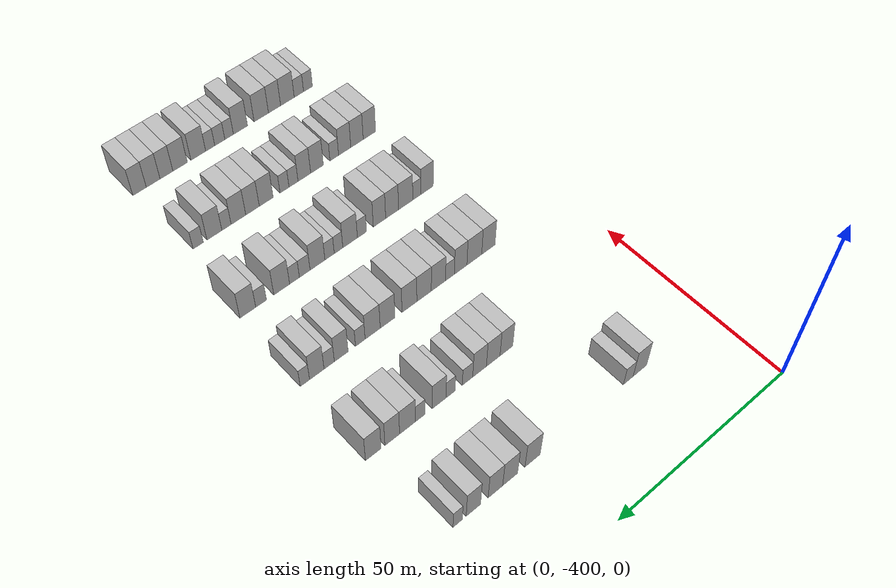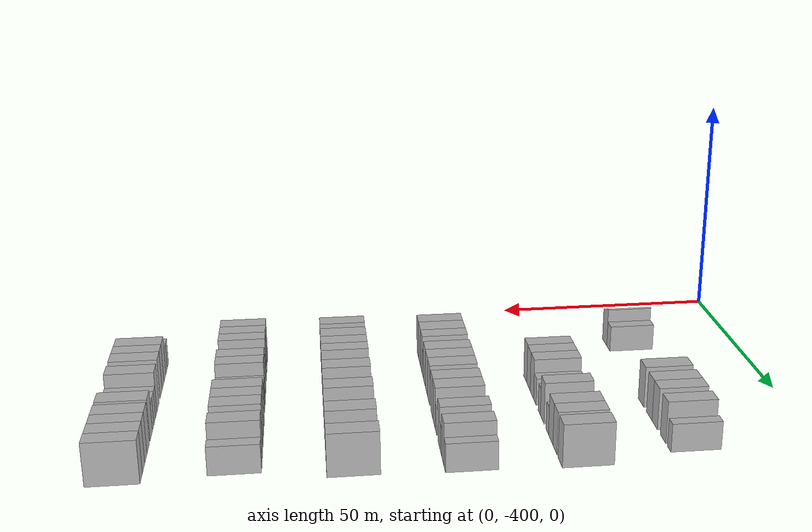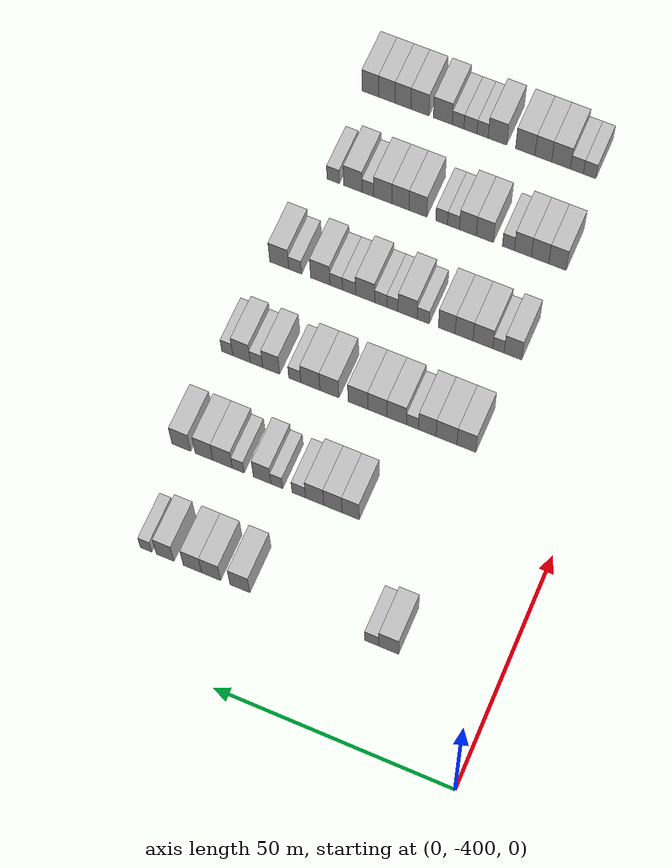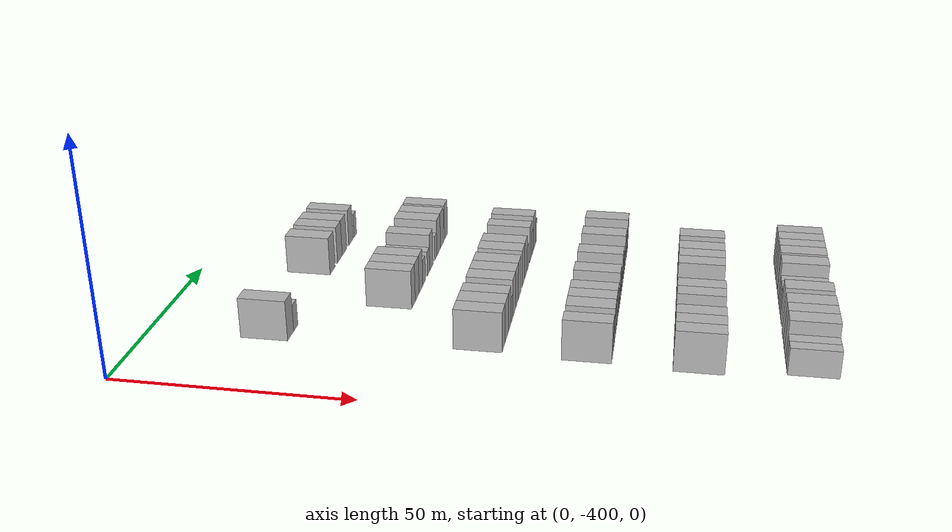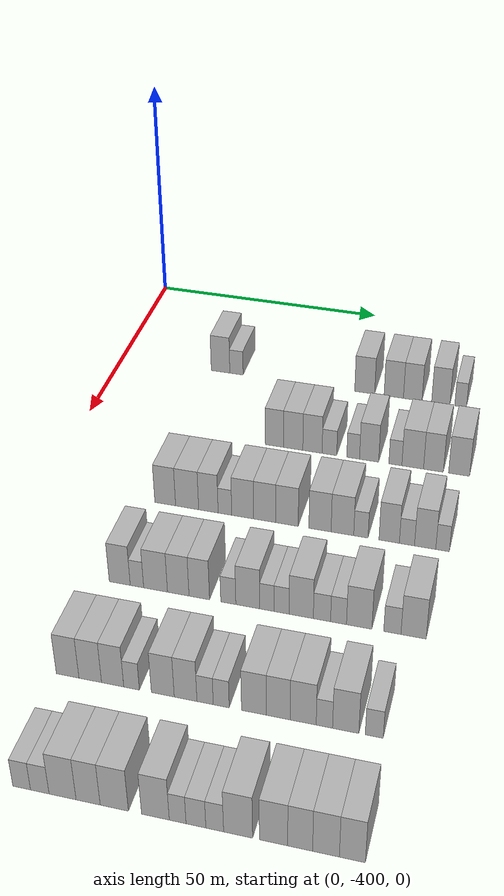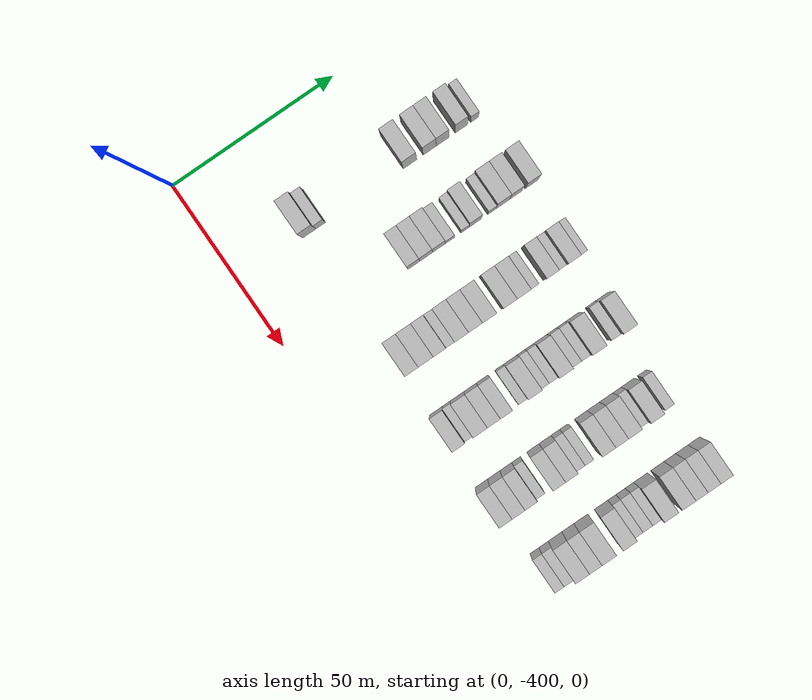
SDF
<sdf version="1.6">
 <world name="default">
  <model name="building_1">
   <static>1</static>
   <pose>25.0000 -377.9382 0 0.000000 0.000000 0.000000</pose>
   <link name="link">
    <pose>0 0 4.50 0 0 0</pose>
    <collision name="collision"><geometry><box><size>10.0000 4.1236 9.0000</size></box></geometry></collision>
    <visual name="visual">
     <cast_shadows>0</cast_shadows>
     <geometry><box><size>10.0000 4.1236 9.0000</size></box></geometry>
     <material>
      <script>
       <uri>model://HANNAS_wall/materials/scripts</uri>
       <uri>model://HANNAS_wall/materials/textures</uri>
       <name>vrc/HANNAS_wall</name>
      </script>
     </material>
    </visual>
   </link>
  </model>
  <model name="building_2">
   <static>1</static>
   <pose>25.0000 -374.4038 0 0.000000 0.000000 0.000000</pose>
   <link name="link">
    <pose>0 0 3.00 0 0 0</pose>
    <collision name="collision"><geometry><box><size>10.0000 2.9452 6.0000</size></box></geometry></collision>
    <visual name="visual">
     <cast_shadows>0</cast_shadows>
     <geometry><box><size>10.0000 2.9452 6.0000</size></box></geometry>
     <material>
      <script>
       <uri>model://HANNAS_wall/materials/scripts</uri>
       <uri>model://HANNAS_wall/materials/textures</uri>
       <name>vrc/HANNAS_wall</name>
      </script>
     </material>
    </visual>
   </link>
  </model>
  <model name="building_3">
   <static>1</static>
   <pose>25.0000 -346.5828 0 0.000000 0.000000 0.000000</pose>
   <link name="link">
    <pose>0 0 4.50 0 0 0</pose>
    <collision name="collision"><geometry><box><size>10.0000 4.2323 9.0000</size></box></geometry></collision>
    <visual name="visual">
     <cast_shadows>0</cast_shadows>
     <geometry><box><size>10.0000 4.2323 9.0000</size></box></geometry>
     <material>
      <script>
       <uri>model://HANNAS_wall/materials/scripts</uri>
       <uri>model://HANNAS_wall/materials/textures</uri>
       <name>vrc/HANNAS_wall</name>
      </script>
     </material>
    </visual>
   </link>
  </model>
  <model name="building_4">
   <static>1</static>
   <pose>25.0000 -340.4268 0 0.000000 0.000000 0.000000</pose>
   <link name="link">
    <pose>0 0 4.50 0 0 0</pose>
    <collision name="collision"><geometry><box><size>10.0000 4.0796 9.0000</size></box></geometry></collision>
    <visual name="visual">
     <cast_shadows>0</cast_shadows>
     <geometry><box><size>10.0000 4.0796 9.0000</size></box></geometry>
     <material>
      <script>
       <uri>model://HANNAS_wall/materials/scripts</uri>
       <uri>model://HANNAS_wall/materials/textures</uri>
       <name>vrc/HANNAS_wall</name>
      </script>
     </material>
    </visual>
   </link>
  </model>
  <model name="building_5">
   <static>1</static>
   <pose>25.0000 -336.4371 0 0.000000 0.000000 0.000000</pose>
   <link name="link">
    <pose>0 0 4.50 0 0 0</pose>
    <collision name="collision"><geometry><box><size>10.0000 3.8998 9.0000</size></box></geometry></collision>
    <visual name="visual">
     <cast_shadows>0</cast_shadows>
     <geometry><box><size>10.0000 3.8998 9.0000</size></box></geometry>
     <material>
      <script>
       <uri>model://HANNAS_wall/materials/scripts</uri>
       <uri>model://HANNAS_wall/materials/textures</uri>
       <name>vrc/HANNAS_wall</name>
      </script>
     </material>
    </visual>
   </link>
  </model>
  <model name="building_6">
   <static>1</static>
   <pose>25.0000 -330.5840 0 0.000000 0.000000 0.000000</pose>
   <link name="link">
    <pose>0 0 4.50 0 0 0</pose>
    <collision name="collision"><geometry><box><size>10.0000 3.8064 9.0000</size></box></geometry></collision>
    <visual name="visual">
     <cast_shadows>0</cast_shadows>
     <geometry><box><size>10.0000 3.8064 9.0000</size></box></geometry>
     <material>
      <script>
       <uri>model://HANNAS_wall/materials/scripts</uri>
       <uri>model://HANNAS_wall/materials/textures</uri>
       <name>vrc/HANNAS_wall</name>
      </script>
     </material>
    </visual>
   </link>
  </model>
  <model name="building_7">
   <static>1</static>
   <pose>25.0000 -326.4665 0 0.000000 0.000000 0.000000</pose>
   <link name="link">
    <pose>0 0 3.00 0 0 0</pose>
    <collision name="collision"><geometry><box><size>10.0000 2.4286 6.0000</size></box></geometry></collision>
    <visual name="visual">
     <cast_shadows>0</cast_shadows>
     <geometry><box><size>10.0000 2.4286 6.0000</size></box></geometry>
     <material>
      <script>
       <uri>model://HANNAS_wall/materials/scripts</uri>
       <uri>model://HANNAS_wall/materials/textures</uri>
       <name>vrc/HANNAS_wall</name>
      </script>
     </material>
    </visual>
   </link>
  </model>
  <model name="building_180">
   <static>1</static>
   <pose>47.0000 -360.4658 0 0.000000 0.000000 0.000000</pose>
   <link name="link">
    <pose>0 0 4.50 0 0 0</pose>
    <collision name="collision"><geometry><box><size>10.0000 3.6895 9.0000</size></box></geometry></collision>
    <visual name="visual">
     <cast_shadows>0</cast_shadows>
     <geometry><box><size>10.0000 3.6895 9.0000</size></box></geometry>
     <material>
      <script>
       <uri>model://HANNAS_wall/materials/scripts</uri>
       <uri>model://HANNAS_wall/materials/textures</uri>
       <name>vrc/HANNAS_wall</name>
      </script>
     </material>
    </visual>
   </link>
  </model>
  <model name="building_181">
   <static>1</static>
   <pose>47.0000 -356.6538 0 0.000000 0.000000 0.000000</pose>
   <link name="link">
    <pose>0 0 4.50 0 0 0</pose>
    <collision name="collision"><geometry><box><size>10.0000 3.9345 9.0000</size></box></geometry></collision>
    <visual name="visual">
     <cast_shadows>0</cast_shadows>
     <geometry><box><size>10.0000 3.9345 9.0000</size></box></geometry>
     <material>
      <script>
       <uri>model://HANNAS_wall/materials/scripts</uri>
       <uri>model://HANNAS_wall/materials/textures</uri>
       <name>vrc/HANNAS_wall</name>
      </script>
     </material>
    </visual>
   </link>
  </model>
  <model name="building_182">
   <static>1</static>
   <pose>47.0000 -352.7439 0 0.000000 0.000000 0.000000</pose>
   <link name="link">
    <pose>0 0 4.50 0 0 0</pose>
    <collision name="collision"><geometry><box><size>10.0000 3.8853 9.0000</size></box></geometry></collision>
    <visual name="visual">
     <cast_shadows>0</cast_shadows>
     <geometry><box><size>10.0000 3.8853 9.0000</size></box></geometry>
     <material>
      <script>
       <uri>model://HANNAS_wall/materials/scripts</uri>
       <uri>model://HANNAS_wall/materials/textures</uri>
       <name>vrc/HANNAS_wall</name>
      </script>
     </material>
    </visual>
   </link>
  </model>
  <model name="building_183">
   <static>1</static>
   <pose>47.0000 -349.3300 0 0.000000 0.000000 0.000000</pose>
   <link name="link">
    <pose>0 0 3.00 0 0 0</pose>
    <collision name="collision"><geometry><box><size>10.0000 2.9426 6.0000</size></box></geometry></collision>
    <visual name="visual">
     <cast_shadows>0</cast_shadows>
     <geometry><box><size>10.0000 2.9426 6.0000</size></box></geometry>
     <material>
      <script>
       <uri>model://HANNAS_wall/materials/scripts</uri>
       <uri>model://HANNAS_wall/materials/textures</uri>
       <name>vrc/HANNAS_wall</name>
      </script>
     </material>
    </visual>
   </link>
  </model>
  <model name="building_184">
   <static>1</static>
   <pose>47.0000 -344.5863 0 0.000000 0.000000 0.000000</pose>
   <link name="link">
    <pose>0 0 3.00 0 0 0</pose>
    <collision name="collision"><geometry><box><size>10.0000 2.5448 6.0000</size></box></geometry></collision>
    <visual name="visual">
     <cast_shadows>0</cast_shadows>
     <geometry><box><size>10.0000 2.5448 6.0000</size></box></geometry>
     <material>
      <script>
       <uri>model://HANNAS_wall/materials/scripts</uri>
       <uri>model://HANNAS_wall/materials/textures</uri>
       <name>vrc/HANNAS_wall</name>
      </script>
     </material>
    </visual>
   </link>
  </model>
  <model name="building_185">
   <static>1</static>
   <pose>47.0000 -341.4136 0 0.000000 0.000000 0.000000</pose>
   <link name="link">
    <pose>0 0 4.50 0 0 0</pose>
    <collision name="collision"><geometry><box><size>10.0000 3.8006 9.0000</size></box></geometry></collision>
    <visual name="visual">
     <cast_shadows>0</cast_shadows>
     <geometry><box><size>10.0000 3.8006 9.0000</size></box></geometry>
     <material>
      <script>
       <uri>model://HANNAS_wall/materials/scripts</uri>
       <uri>model://HANNAS_wall/materials/textures</uri>
       <name>vrc/HANNAS_wall</name>
      </script>
     </material>
    </visual>
   </link>
  </model>
  <model name="building_186">
   <static>1</static>
   <pose>47.0000 -336.2298 0 0.000000 0.000000 0.000000</pose>
   <link name="link">
    <pose>0 0 3.00 0 0 0</pose>
    <collision name="collision"><geometry><box><size>10.0000 2.5669 6.0000</size></box></geometry></collision>
    <visual name="visual">
     <cast_shadows>0</cast_shadows>
     <geometry><box><size>10.0000 2.5669 6.0000</size></box></geometry>
     <material>
      <script>
       <uri>model://HANNAS_wall/materials/scripts</uri>
       <uri>model://HANNAS_wall/materials/textures</uri>
       <name>vrc/HANNAS_wall</name>
      </script>
     </material>
    </visual>
   </link>
  </model>
  <model name="building_187">
   <static>1</static>
   <pose>47.0000 -332.8271 0 0.000000 0.000000 0.000000</pose>
   <link name="link">
    <pose>0 0 4.50 0 0 0</pose>
    <collision name="collision"><geometry><box><size>10.0000 4.2386 9.0000</size></box></geometry></collision>
    <visual name="visual">
     <cast_shadows>0</cast_shadows>
     <geometry><box><size>10.0000 4.2386 9.0000</size></box></geometry>
     <material>
      <script>
       <uri>model://HANNAS_wall/materials/scripts</uri>
       <uri>model://HANNAS_wall/materials/textures</uri>
       <name>vrc/HANNAS_wall</name>
      </script>
     </material>
    </visual>
   </link>
  </model>
  <model name="building_188">
   <static>1</static>
   <pose>47.0000 -328.7754 0 0.000000 0.000000 0.000000</pose>
   <link name="link">
    <pose>0 0 4.50 0 0 0</pose>
    <collision name="collision"><geometry><box><size>10.0000 3.8648 9.0000</size></box></geometry></collision>
    <visual name="visual">
     <cast_shadows>0</cast_shadows>
     <geometry><box><size>10.0000 3.8648 9.0000</size></box></geometry>
     <material>
      <script>
       <uri>model://HANNAS_wall/materials/scripts</uri>
       <uri>model://HANNAS_wall/materials/textures</uri>
       <name>vrc/HANNAS_wall</name>
      </script>
     </material>
    </visual>
   </link>
  </model>
  <model name="building_189">
   <static>1</static>
   <pose>47.0000 -323.8075 0 0.000000 0.000000 0.000000</pose>
   <link name="link">
    <pose>0 0 4.50 0 0 0</pose>
    <collision name="collision"><geometry><box><size>10.0000 4.0708 9.0000</size></box></geometry></collision>
    <visual name="visual">
     <cast_shadows>0</cast_shadows>
     <geometry><box><size>10.0000 4.0708 9.0000</size></box></geometry>
     <material>
      <script>
       <uri>model://HANNAS_wall/materials/scripts</uri>
       <uri>model://HANNAS_wall/materials/textures</uri>
       <name>vrc/HANNAS_wall</name>
      </script>
     </material>
    </visual>
   </link>
  </model>
  <model name="building_361">
   <static>1</static>
   <pose>69.0000 -375.9639 0 0.000000 0.000000 0.000000</pose>
   <link name="link">
    <pose>0 0 4.50 0 0 0</pose>
    <collision name="collision"><geometry><box><size>10.0000 4.0722 9.0000</size></box></geometry></collision>
    <visual name="visual">
     <cast_shadows>0</cast_shadows>
     <geometry><box><size>10.0000 4.0722 9.0000</size></box></geometry>
     <material>
      <script>
       <uri>model://HANNAS_wall/materials/scripts</uri>
       <uri>model://HANNAS_wall/materials/textures</uri>
       <name>vrc/HANNAS_wall</name>
      </script>
     </material>
    </visual>
   </link>
  </model>
  <model name="building_362">
   <static>1</static>
   <pose>69.0000 -371.6778 0 0.000000 0.000000 0.000000</pose>
   <link name="link">
    <pose>0 0 4.50 0 0 0</pose>
    <collision name="collision"><geometry><box><size>10.0000 4.4999 9.0000</size></box></geometry></collision>
    <visual name="visual">
     <cast_shadows>0</cast_shadows>
     <geometry><box><size>10.0000 4.4999 9.0000</size></box></geometry>
     <material>
      <script>
       <uri>model://HANNAS_wall/materials/scripts</uri>
       <uri>model://HANNAS_wall/materials/textures</uri>
       <name>vrc/HANNAS_wall</name>
      </script>
     </material>
    </visual>
   </link>
  </model>
  <model name="building_363">
   <static>1</static>
   <pose>69.0000 -367.5434 0 0.000000 0.000000 0.000000</pose>
   <link name="link">
    <pose>0 0 4.50 0 0 0</pose>
    <collision name="collision"><geometry><box><size>10.0000 3.7690 9.0000</size></box></geometry></collision>
    <visual name="visual">
     <cast_shadows>0</cast_shadows>
     <geometry><box><size>10.0000 3.7690 9.0000</size></box></geometry>
     <material>
      <script>
       <uri>model://HANNAS_wall/materials/scripts</uri>
       <uri>model://HANNAS_wall/materials/textures</uri>
       <name>vrc/HANNAS_wall</name>
      </script>
     </material>
    </visual>
   </link>
  </model>
  <model name="building_364">
   <static>1</static>
   <pose>69.0000 -364.3459 0 0.000000 0.000000 0.000000</pose>
   <link name="link">
    <pose>0 0 3.00 0 0 0</pose>
    <collision name="collision"><geometry><box><size>10.0000 2.6259 6.0000</size></box></geometry></collision>
    <visual name="visual">
     <cast_shadows>0</cast_shadows>
     <geometry><box><size>10.0000 2.6259 6.0000</size></box></geometry>
     <material>
      <script>
       <uri>model://HANNAS_wall/materials/scripts</uri>
       <uri>model://HANNAS_wall/materials/textures</uri>
       <name>vrc/HANNAS_wall</name>
      </script>
     </material>
    </visual>
   </link>
  </model>
  <model name="building_365">
   <static>1</static>
   <pose>69.0000 -360.9381 0 0.000000 0.000000 0.000000</pose>
   <link name="link">
    <pose>0 0 4.50 0 0 0</pose>
    <collision name="collision"><geometry><box><size>10.0000 4.1897 9.0000</size></box></geometry></collision>
    <visual name="visual">
     <cast_shadows>0</cast_shadows>
     <geometry><box><size>10.0000 4.1897 9.0000</size></box></geometry>
     <material>
      <script>
       <uri>model://HANNAS_wall/materials/scripts</uri>
       <uri>model://HANNAS_wall/materials/textures</uri>
       <name>vrc/HANNAS_wall</name>
      </script>
     </material>
    </visual>
   </link>
  </model>
  <model name="building_366">
   <static>1</static>
   <pose>69.0000 -356.7503 0 0.000000 0.000000 0.000000</pose>
   <link name="link">
    <pose>0 0 4.50 0 0 0</pose>
    <collision name="collision"><geometry><box><size>10.0000 4.1860 9.0000</size></box></geometry></collision>
    <visual name="visual">
     <cast_shadows>0</cast_shadows>
     <geometry><box><size>10.0000 4.1860 9.0000</size></box></geometry>
     <material>
      <script>
       <uri>model://HANNAS_wall/materials/scripts</uri>
       <uri>model://HANNAS_wall/materials/textures</uri>
       <name>vrc/HANNAS_wall</name>
      </script>
     </material>
    </visual>
   </link>
  </model>
  <model name="building_367">
   <static>1</static>
   <pose>69.0000 -352.5211 0 0.000000 0.000000 0.000000</pose>
   <link name="link">
    <pose>0 0 4.50 0 0 0</pose>
    <collision name="collision"><geometry><box><size>10.0000 4.2724 9.0000</size></box></geometry></collision>
    <visual name="visual">
     <cast_shadows>0</cast_shadows>
     <geometry><box><size>10.0000 4.2724 9.0000</size></box></geometry>
     <material>
      <script>
       <uri>model://HANNAS_wall/materials/scripts</uri>
       <uri>model://HANNAS_wall/materials/textures</uri>
       <name>vrc/HANNAS_wall</name>
      </script>
     </material>
    </visual>
   </link>
  </model>
  <model name="building_368">
   <static>1</static>
   <pose>69.0000 -346.3063 0 0.000000 0.000000 0.000000</pose>
   <link name="link">
    <pose>0 0 4.50 0 0 0</pose>
    <collision name="collision"><geometry><box><size>10.0000 4.1572 9.0000</size></box></geometry></collision>
    <visual name="visual">
     <cast_shadows>0</cast_shadows>
     <geometry><box><size>10.0000 4.1572 9.0000</size></box></geometry>
     <material>
      <script>
       <uri>model://HANNAS_wall/materials/scripts</uri>
       <uri>model://HANNAS_wall/materials/textures</uri>
       <name>vrc/HANNAS_wall</name>
      </script>
     </material>
    </visual>
   </link>
  </model>
  <model name="building_369">
   <static>1</static>
   <pose>69.0000 -342.1264 0 0.000000 0.000000 0.000000</pose>
   <link name="link">
    <pose>0 0 4.50 0 0 0</pose>
    <collision name="collision"><geometry><box><size>10.0000 4.2025 9.0000</size></box></geometry></collision>
    <visual name="visual">
     <cast_shadows>0</cast_shadows>
     <geometry><box><size>10.0000 4.2025 9.0000</size></box></geometry>
     <material>
      <script>
       <uri>model://HANNAS_wall/materials/scripts</uri>
       <uri>model://HANNAS_wall/materials/textures</uri>
       <name>vrc/HANNAS_wall</name>
      </script>
     </material>
    </visual>
   </link>
  </model>
  <model name="building_370">
   <static>1</static>
   <pose>69.0000 -338.7003 0 0.000000 0.000000 0.000000</pose>
   <link name="link">
    <pose>0 0 3.00 0 0 0</pose>
    <collision name="collision"><geometry><box><size>10.0000 2.6498 6.0000</size></box></geometry></collision>
    <visual name="visual">
     <cast_shadows>0</cast_shadows>
     <geometry><box><size>10.0000 2.6498 6.0000</size></box></geometry>
     <material>
      <script>
       <uri>model://HANNAS_wall/materials/scripts</uri>
       <uri>model://HANNAS_wall/materials/textures</uri>
       <name>vrc/HANNAS_wall</name>
      </script>
     </material>
    </visual>
   </link>
  </model>
  <model name="building_371">
   <static>1</static>
   <pose>69.0000 -333.5044 0 0.000000 0.000000 0.000000</pose>
   <link name="link">
    <pose>0 0 4.50 0 0 0</pose>
    <collision name="collision"><geometry><box><size>10.0000 3.7419 9.0000</size></box></geometry></collision>
    <visual name="visual">
     <cast_shadows>0</cast_shadows>
     <geometry><box><size>10.0000 3.7419 9.0000</size></box></geometry>
     <material>
      <script>
       <uri>model://HANNAS_wall/materials/scripts</uri>
       <uri>model://HANNAS_wall/materials/textures</uri>
       <name>vrc/HANNAS_wall</name>
      </script>
     </material>
    </visual>
   </link>
  </model>
  <model name="building_372">
   <static>1</static>
   <pose>69.0000 -330.2562 0 0.000000 0.000000 0.000000</pose>
   <link name="link">
    <pose>0 0 3.00 0 0 0</pose>
    <collision name="collision"><geometry><box><size>10.0000 2.7547 6.0000</size></box></geometry></collision>
    <visual name="visual">
     <cast_shadows>0</cast_shadows>
     <geometry><box><size>10.0000 2.7547 6.0000</size></box></geometry>
     <material>
      <script>
       <uri>model://HANNAS_wall/materials/scripts</uri>
       <uri>model://HANNAS_wall/materials/textures</uri>
       <name>vrc/HANNAS_wall</name>
      </script>
     </material>
    </visual>
   </link>
  </model>
  <model name="building_373">
   <static>1</static>
   <pose>69.0000 -326.9495 0 0.000000 0.000000 0.000000</pose>
   <link name="link">
    <pose>0 0 4.50 0 0 0</pose>
    <collision name="collision"><geometry><box><size>10.0000 3.8586 9.0000</size></box></geometry></collision>
    <visual name="visual">
     <cast_shadows>0</cast_shadows>
     <geometry><box><size>10.0000 3.8586 9.0000</size></box></geometry>
     <material>
      <script>
       <uri>model://HANNAS_wall/materials/scripts</uri>
       <uri>model://HANNAS_wall/materials/textures</uri>
       <name>vrc/HANNAS_wall</name>
      </script>
     </material>
    </visual>
   </link>
  </model>
  <model name="building_374">
   <static>1</static>
   <pose>69.0000 -323.7936 0 0.000000 0.000000 0.000000</pose>
   <link name="link">
    <pose>0 0 3.00 0 0 0</pose>
    <collision name="collision"><geometry><box><size>10.0000 2.4531 6.0000</size></box></geometry></collision>
    <visual name="visual">
     <cast_shadows>0</cast_shadows>
     <geometry><box><size>10.0000 2.4531 6.0000</size></box></geometry>
     <material>
      <script>
       <uri>model://HANNAS_wall/materials/scripts</uri>
       <uri>model://HANNAS_wall/materials/textures</uri>
       <name>vrc/HANNAS_wall</name>
      </script>
     </material>
    </visual>
   </link>
  </model>
  <model name="building_538">
   <static>1</static>
   <pose>91.0000 -377.0740 0 0.000000 0.000000 0.000000</pose>
   <link name="link">
    <pose>0 0 4.50 0 0 0</pose>
    <collision name="collision"><geometry><box><size>10.0000 3.8519 9.0000</size></box></geometry></collision>
    <visual name="visual">
     <cast_shadows>0</cast_shadows>
     <geometry><box><size>10.0000 3.8519 9.0000</size></box></geometry>
     <material>
      <script>
       <uri>model://HANNAS_wall/materials/scripts</uri>
       <uri>model://HANNAS_wall/materials/textures</uri>
       <name>vrc/HANNAS_wall</name>
      </script>
     </material>
    </visual>
   </link>
  </model>
  <model name="building_539">
   <static>1</static>
   <pose>91.0000 -373.9220 0 0.000000 0.000000 0.000000</pose>
   <link name="link">
    <pose>0 0 3.00 0 0 0</pose>
    <collision name="collision"><geometry><box><size>10.0000 2.4522 6.0000</size></box></geometry></collision>
    <visual name="visual">
     <cast_shadows>0</cast_shadows>
     <geometry><box><size>10.0000 2.4522 6.0000</size></box></geometry>
     <material>
      <script>
       <uri>model://HANNAS_wall/materials/scripts</uri>
       <uri>model://HANNAS_wall/materials/textures</uri>
       <name>vrc/HANNAS_wall</name>
      </script>
     </material>
    </visual>
   </link>
  </model>
  <model name="building_540">
   <static>1</static>
   <pose>91.0000 -370.5287 0 0.000000 0.000000 0.000000</pose>
   <link name="link">
    <pose>0 0 4.50 0 0 0</pose>
    <collision name="collision"><geometry><box><size>10.0000 4.3343 9.0000</size></box></geometry></collision>
    <visual name="visual">
     <cast_shadows>0</cast_shadows>
     <geometry><box><size>10.0000 4.3343 9.0000</size></box></geometry>
     <material>
      <script>
       <uri>model://HANNAS_wall/materials/scripts</uri>
       <uri>model://HANNAS_wall/materials/textures</uri>
       <name>vrc/HANNAS_wall</name>
      </script>
     </material>
    </visual>
   </link>
  </model>
  <model name="building_541">
   <static>1</static>
   <pose>91.0000 -366.4172 0 0.000000 0.000000 0.000000</pose>
   <link name="link">
    <pose>0 0 4.50 0 0 0</pose>
    <collision name="collision"><geometry><box><size>10.0000 3.8886 9.0000</size></box></geometry></collision>
    <visual name="visual">
     <cast_shadows>0</cast_shadows>
     <geometry><box><size>10.0000 3.8886 9.0000</size></box></geometry>
     <material>
      <script>
       <uri>model://HANNAS_wall/materials/scripts</uri>
       <uri>model://HANNAS_wall/materials/textures</uri>
       <name>vrc/HANNAS_wall</name>
      </script>
     </material>
    </visual>
   </link>
  </model>
  <model name="building_542">
   <static>1</static>
   <pose>91.0000 -362.6300 0 0.000000 0.000000 0.000000</pose>
   <link name="link">
    <pose>0 0 4.50 0 0 0</pose>
    <collision name="collision"><geometry><box><size>10.0000 3.6859 9.0000</size></box></geometry></collision>
    <visual name="visual">
     <cast_shadows>0</cast_shadows>
     <geometry><box><size>10.0000 3.6859 9.0000</size></box></geometry>
     <material>
      <script>
       <uri>model://HANNAS_wall/materials/scripts</uri>
       <uri>model://HANNAS_wall/materials/textures</uri>
       <name>vrc/HANNAS_wall</name>
      </script>
     </material>
    </visual>
   </link>
  </model>
  <model name="building_543">
   <static>1</static>
   <pose>91.0000 -357.4492 0 0.000000 0.000000 0.000000</pose>
   <link name="link">
    <pose>0 0 3.00 0 0 0</pose>
    <collision name="collision"><geometry><box><size>10.0000 2.6755 6.0000</size></box></geometry></collision>
    <visual name="visual">
     <cast_shadows>0</cast_shadows>
     <geometry><box><size>10.0000 2.6755 6.0000</size></box></geometry>
     <material>
      <script>
       <uri>model://HANNAS_wall/materials/scripts</uri>
       <uri>model://HANNAS_wall/materials/textures</uri>
       <name>vrc/HANNAS_wall</name>
      </script>
     </material>
    </visual>
   </link>
  </model>
  <model name="building_544">
   <static>1</static>
   <pose>91.0000 -353.9932 0 0.000000 0.000000 0.000000</pose>
   <link name="link">
    <pose>0 0 4.50 0 0 0</pose>
    <collision name="collision"><geometry><box><size>10.0000 4.2366 9.0000</size></box></geometry></collision>
    <visual name="visual">
     <cast_shadows>0</cast_shadows>
     <geometry><box><size>10.0000 4.2366 9.0000</size></box></geometry>
     <material>
      <script>
       <uri>model://HANNAS_wall/materials/scripts</uri>
       <uri>model://HANNAS_wall/materials/textures</uri>
       <name>vrc/HANNAS_wall</name>
      </script>
     </material>
    </visual>
   </link>
  </model>
  <model name="building_545">
   <static>1</static>
   <pose>91.0000 -350.6344 0 0.000000 0.000000 0.000000</pose>
   <link name="link">
    <pose>0 0 3.00 0 0 0</pose>
    <collision name="collision"><geometry><box><size>10.0000 2.4809 6.0000</size></box></geometry></collision>
    <visual name="visual">
     <cast_shadows>0</cast_shadows>
     <geometry><box><size>10.0000 2.4809 6.0000</size></box></geometry>
     <material>
      <script>
       <uri>model://HANNAS_wall/materials/scripts</uri>
       <uri>model://HANNAS_wall/materials/textures</uri>
       <name>vrc/HANNAS_wall</name>
      </script>
     </material>
    </visual>
   </link>
  </model>
  <model name="building_546">
   <static>1</static>
   <pose>91.0000 -348.0631 0 0.000000 0.000000 0.000000</pose>
   <link name="link">
    <pose>0 0 3.00 0 0 0</pose>
    <collision name="collision"><geometry><box><size>10.0000 2.6618 6.0000</size></box></geometry></collision>
    <visual name="visual">
     <cast_shadows>0</cast_shadows>
     <geometry><box><size>10.0000 2.6618 6.0000</size></box></geometry>
     <material>
      <script>
       <uri>model://HANNAS_wall/materials/scripts</uri>
       <uri>model://HANNAS_wall/materials/textures</uri>
       <name>vrc/HANNAS_wall</name>
      </script>
     </material>
    </visual>
   </link>
  </model>
  <model name="building_547">
   <static>1</static>
   <pose>91.0000 -344.6281 0 0.000000 0.000000 0.000000</pose>
   <link name="link">
    <pose>0 0 4.50 0 0 0</pose>
    <collision name="collision"><geometry><box><size>10.0000 4.2082 9.0000</size></box></geometry></collision>
    <visual name="visual">
     <cast_shadows>0</cast_shadows>
     <geometry><box><size>10.0000 4.2082 9.0000</size></box></geometry>
     <material>
      <script>
       <uri>model://HANNAS_wall/materials/scripts</uri>
       <uri>model://HANNAS_wall/materials/textures</uri>
       <name>vrc/HANNAS_wall</name>
      </script>
     </material>
    </visual>
   </link>
  </model>
  <model name="building_548">
   <static>1</static>
   <pose>91.0000 -341.0363 0 0.000000 0.000000 0.000000</pose>
   <link name="link">
    <pose>0 0 3.00 0 0 0</pose>
    <collision name="collision"><geometry><box><size>10.0000 2.9754 6.0000</size></box></geometry></collision>
    <visual name="visual">
     <cast_shadows>0</cast_shadows>
     <geometry><box><size>10.0000 2.9754 6.0000</size></box></geometry>
     <material>
      <script>
       <uri>model://HANNAS_wall/materials/scripts</uri>
       <uri>model://HANNAS_wall/materials/textures</uri>
       <name>vrc/HANNAS_wall</name>
      </script>
     </material>
    </visual>
   </link>
  </model>
  <model name="building_549">
   <static>1</static>
   <pose>91.0000 -338.1836 0 0.000000 0.000000 0.000000</pose>
   <link name="link">
    <pose>0 0 3.00 0 0 0</pose>
    <collision name="collision"><geometry><box><size>10.0000 2.7298 6.0000</size></box></geometry></collision>
    <visual name="visual">
     <cast_shadows>0</cast_shadows>
     <geometry><box><size>10.0000 2.7298 6.0000</size></box></geometry>
     <material>
      <script>
       <uri>model://HANNAS_wall/materials/scripts</uri>
       <uri>model://HANNAS_wall/materials/textures</uri>
       <name>vrc/HANNAS_wall</name>
      </script>
     </material>
    </visual>
   </link>
  </model>
  <model name="building_550">
   <static>1</static>
   <pose>91.0000 -334.6475 0 0.000000 0.000000 0.000000</pose>
   <link name="link">
    <pose>0 0 4.50 0 0 0</pose>
    <collision name="collision"><geometry><box><size>10.0000 4.3425 9.0000</size></box></geometry></collision>
    <visual name="visual">
     <cast_shadows>0</cast_shadows>
     <geometry><box><size>10.0000 4.3425 9.0000</size></box></geometry>
     <material>
      <script>
       <uri>model://HANNAS_wall/materials/scripts</uri>
       <uri>model://HANNAS_wall/materials/textures</uri>
       <name>vrc/HANNAS_wall</name>
      </script>
     </material>
    </visual>
   </link>
  </model>
  <model name="building_551">
   <static>1</static>
   <pose>91.0000 -329.0214 0 0.000000 0.000000 0.000000</pose>
   <link name="link">
    <pose>0 0 3.00 0 0 0</pose>
    <collision name="collision"><geometry><box><size>10.0000 2.9096 6.0000</size></box></geometry></collision>
    <visual name="visual">
     <cast_shadows>0</cast_shadows>
     <geometry><box><size>10.0000 2.9096 6.0000</size></box></geometry>
     <material>
      <script>
       <uri>model://HANNAS_wall/materials/scripts</uri>
       <uri>model://HANNAS_wall/materials/textures</uri>
       <name>vrc/HANNAS_wall</name>
      </script>
     </material>
    </visual>
   </link>
  </model>
  <model name="building_552">
   <static>1</static>
   <pose>91.0000 -325.4475 0 0.000000 0.000000 0.000000</pose>
   <link name="link">
    <pose>0 0 4.50 0 0 0</pose>
    <collision name="collision"><geometry><box><size>10.0000 4.2382 9.0000</size></box></geometry></collision>
    <visual name="visual">
     <cast_shadows>0</cast_shadows>
     <geometry><box><size>10.0000 4.2382 9.0000</size></box></geometry>
     <material>
      <script>
       <uri>model://HANNAS_wall/materials/scripts</uri>
       <uri>model://HANNAS_wall/materials/textures</uri>
       <name>vrc/HANNAS_wall</name>
      </script>
     </material>
    </visual>
   </link>
  </model>
  <model name="building_731">
   <static>1</static>
   <pose>113.0000 -378.0620 0 0.000000 0.000000 0.000000</pose>
   <link name="link">
    <pose>0 0 4.50 0 0 0</pose>
    <collision name="collision"><geometry><box><size>10.0000 3.8760 9.0000</size></box></geometry></collision>
    <visual name="visual">
     <cast_shadows>0</cast_shadows>
     <geometry><box><size>10.0000 3.8760 9.0000</size></box></geometry>
     <material>
      <script>
       <uri>model://HANNAS_wall/materials/scripts</uri>
       <uri>model://HANNAS_wall/materials/textures</uri>
       <name>vrc/HANNAS_wall</name>
      </script>
     </material>
    </visual>
   </link>
  </model>
  <model name="building_732">
   <static>1</static>
   <pose>113.0000 -374.1967 0 0.000000 0.000000 0.000000</pose>
   <link name="link">
    <pose>0 0 4.50 0 0 0</pose>
    <collision name="collision"><geometry><box><size>10.0000 3.8546 9.0000</size></box></geometry></collision>
    <visual name="visual">
     <cast_shadows>0</cast_shadows>
     <geometry><box><size>10.0000 3.8546 9.0000</size></box></geometry>
     <material>
      <script>
       <uri>model://HANNAS_wall/materials/scripts</uri>
       <uri>model://HANNAS_wall/materials/textures</uri>
       <name>vrc/HANNAS_wall</name>
      </script>
     </material>
    </visual>
   </link>
  </model>
  <model name="building_733">
   <static>1</static>
   <pose>113.0000 -370.3931 0 0.000000 0.000000 0.000000</pose>
   <link name="link">
    <pose>0 0 4.50 0 0 0</pose>
    <collision name="collision"><geometry><box><size>10.0000 3.7527 9.0000</size></box></geometry></collision>
    <visual name="visual">
     <cast_shadows>0</cast_shadows>
     <geometry><box><size>10.0000 3.7527 9.0000</size></box></geometry>
     <material>
      <script>
       <uri>model://HANNAS_wall/materials/scripts</uri>
       <uri>model://HANNAS_wall/materials/textures</uri>
       <name>vrc/HANNAS_wall</name>
      </script>
     </material>
    </visual>
   </link>
  </model>
  <model name="building_734">
   <static>1</static>
   <pose>113.0000 -367.2032 0 0.000000 0.000000 0.000000</pose>
   <link name="link">
    <pose>0 0 3.00 0 0 0</pose>
    <collision name="collision"><geometry><box><size>10.0000 2.6270 6.0000</size></box></geometry></collision>
    <visual name="visual">
     <cast_shadows>0</cast_shadows>
     <geometry><box><size>10.0000 2.6270 6.0000</size></box></geometry>
     <material>
      <script>
       <uri>model://HANNAS_wall/materials/scripts</uri>
       <uri>model://HANNAS_wall/materials/textures</uri>
       <name>vrc/HANNAS_wall</name>
      </script>
     </material>
    </visual>
   </link>
  </model>
  <model name="building_735">
   <static>1</static>
   <pose>113.0000 -361.9835 0 0.000000 0.000000 0.000000</pose>
   <link name="link">
    <pose>0 0 4.50 0 0 0</pose>
    <collision name="collision"><geometry><box><size>10.0000 3.8124 9.0000</size></box></geometry></collision>
    <visual name="visual">
     <cast_shadows>0</cast_shadows>
     <geometry><box><size>10.0000 3.8124 9.0000</size></box></geometry>
     <material>
      <script>
       <uri>model://HANNAS_wall/materials/scripts</uri>
       <uri>model://HANNAS_wall/materials/textures</uri>
       <name>vrc/HANNAS_wall</name>
      </script>
     </material>
    </visual>
   </link>
  </model>
  <model name="building_736">
   <static>1</static>
   <pose>113.0000 -358.1991 0 0.000000 0.000000 0.000000</pose>
   <link name="link">
    <pose>0 0 4.50 0 0 0</pose>
    <collision name="collision"><geometry><box><size>10.0000 3.7563 9.0000</size></box></geometry></collision>
    <visual name="visual">
     <cast_shadows>0</cast_shadows>
     <geometry><box><size>10.0000 3.7563 9.0000</size></box></geometry>
     <material>
      <script>
       <uri>model://HANNAS_wall/materials/scripts</uri>
       <uri>model://HANNAS_wall/materials/textures</uri>
       <name>vrc/HANNAS_wall</name>
      </script>
     </material>
    </visual>
   </link>
  </model>
  <model name="building_737">
   <static>1</static>
   <pose>113.0000 -354.9842 0 0.000000 0.000000 0.000000</pose>
   <link name="link">
    <pose>0 0 3.00 0 0 0</pose>
    <collision name="collision"><geometry><box><size>10.0000 2.6735 6.0000</size></box></geometry></collision>
    <visual name="visual">
     <cast_shadows>0</cast_shadows>
     <geometry><box><size>10.0000 2.6735 6.0000</size></box></geometry>
     <material>
      <script>
       <uri>model://HANNAS_wall/materials/scripts</uri>
       <uri>model://HANNAS_wall/materials/textures</uri>
       <name>vrc/HANNAS_wall</name>
      </script>
     </material>
    </visual>
   </link>
  </model>
  <model name="building_738">
   <static>1</static>
   <pose>113.0000 -352.3428 0 0.000000 0.000000 0.000000</pose>
   <link name="link">
    <pose>0 0 3.00 0 0 0</pose>
    <collision name="collision"><geometry><box><size>10.0000 2.6093 6.0000</size></box></geometry></collision>
    <visual name="visual">
     <cast_shadows>0</cast_shadows>
     <geometry><box><size>10.0000 2.6093 6.0000</size></box></geometry>
     <material>
      <script>
       <uri>model://HANNAS_wall/materials/scripts</uri>
       <uri>model://HANNAS_wall/materials/textures</uri>
       <name>vrc/HANNAS_wall</name>
      </script>
     </material>
    </visual>
   </link>
  </model>
  <model name="building_739">
   <static>1</static>
   <pose>113.0000 -347.0358 0 0.000000 0.000000 0.000000</pose>
   <link name="link">
    <pose>0 0 4.50 0 0 0</pose>
    <collision name="collision"><geometry><box><size>10.0000 4.0048 9.0000</size></box></geometry></collision>
    <visual name="visual">
     <cast_shadows>0</cast_shadows>
     <geometry><box><size>10.0000 4.0048 9.0000</size></box></geometry>
     <material>
      <script>
       <uri>model://HANNAS_wall/materials/scripts</uri>
       <uri>model://HANNAS_wall/materials/textures</uri>
       <name>vrc/HANNAS_wall</name>
      </script>
     </material>
    </visual>
   </link>
  </model>
  <model name="building_740">
   <static>1</static>
   <pose>113.0000 -343.1080 0 0.000000 0.000000 0.000000</pose>
   <link name="link">
    <pose>0 0 4.50 0 0 0</pose>
    <collision name="collision"><geometry><box><size>10.0000 3.8507 9.0000</size></box></geometry></collision>
    <visual name="visual">
     <cast_shadows>0</cast_shadows>
     <geometry><box><size>10.0000 3.8507 9.0000</size></box></geometry>
     <material>
      <script>
       <uri>model://HANNAS_wall/materials/scripts</uri>
       <uri>model://HANNAS_wall/materials/textures</uri>
       <name>vrc/HANNAS_wall</name>
      </script>
     </material>
    </visual>
   </link>
  </model>
  <model name="building_741">
   <static>1</static>
   <pose>113.0000 -339.1200 0 0.000000 0.000000 0.000000</pose>
   <link name="link">
    <pose>0 0 4.50 0 0 0</pose>
    <collision name="collision"><geometry><box><size>10.0000 4.1252 9.0000</size></box></geometry></collision>
    <visual name="visual">
     <cast_shadows>0</cast_shadows>
     <geometry><box><size>10.0000 4.1252 9.0000</size></box></geometry>
     <material>
      <script>
       <uri>model://HANNAS_wall/materials/scripts</uri>
       <uri>model://HANNAS_wall/materials/textures</uri>
       <name>vrc/HANNAS_wall</name>
      </script>
     </material>
    </visual>
   </link>
  </model>
  <model name="building_742">
   <static>1</static>
   <pose>113.0000 -335.7617 0 0.000000 0.000000 0.000000</pose>
   <link name="link">
    <pose>0 0 3.00 0 0 0</pose>
    <collision name="collision"><geometry><box><size>10.0000 2.5914 6.0000</size></box></geometry></collision>
    <visual name="visual">
     <cast_shadows>0</cast_shadows>
     <geometry><box><size>10.0000 2.5914 6.0000</size></box></geometry>
     <material>
      <script>
       <uri>model://HANNAS_wall/materials/scripts</uri>
       <uri>model://HANNAS_wall/materials/textures</uri>
       <name>vrc/HANNAS_wall</name>
      </script>
     </material>
    </visual>
   </link>
  </model>
  <model name="building_743">
   <static>1</static>
   <pose>113.0000 -332.4013 0 0.000000 0.000000 0.000000</pose>
   <link name="link">
    <pose>0 0 4.50 0 0 0</pose>
    <collision name="collision"><geometry><box><size>10.0000 4.1295 9.0000</size></box></geometry></collision>
    <visual name="visual">
     <cast_shadows>0</cast_shadows>
     <geometry><box><size>10.0000 4.1295 9.0000</size></box></geometry>
     <material>
      <script>
       <uri>model://HANNAS_wall/materials/scripts</uri>
       <uri>model://HANNAS_wall/materials/textures</uri>
       <name>vrc/HANNAS_wall</name>
      </script>
     </material>
    </visual>
   </link>
  </model>
  <model name="building_744">
   <static>1</static>
   <pose>113.0000 -327.9326 0 0.000000 0.000000 0.000000</pose>
   <link name="link">
    <pose>0 0 3.00 0 0 0</pose>
    <collision name="collision"><geometry><box><size>10.0000 2.8078 6.0000</size></box></geometry></collision>
    <visual name="visual">
     <cast_shadows>0</cast_shadows>
     <geometry><box><size>10.0000 2.8078 6.0000</size></box></geometry>
     <material>
      <script>
       <uri>model://HANNAS_wall/materials/scripts</uri>
       <uri>model://HANNAS_wall/materials/textures</uri>
       <name>vrc/HANNAS_wall</name>
      </script>
     </material>
    </visual>
   </link>
  </model>
  <model name="building_920">
   <static>1</static>
   <pose>135.0000 -376.6002 0 0.000000 0.000000 0.000000</pose>
   <link name="link">
    <pose>0 0 3.00 0 0 0</pose>
    <collision name="collision"><geometry><box><size>10.0000 2.7995 6.0000</size></box></geometry></collision>
    <visual name="visual">
     <cast_shadows>0</cast_shadows>
     <geometry><box><size>10.0000 2.7995 6.0000</size></box></geometry>
     <material>
      <script>
       <uri>model://HANNAS_wall/materials/scripts</uri>
       <uri>model://HANNAS_wall/materials/textures</uri>
       <name>vrc/HANNAS_wall</name>
      </script>
     </material>
    </visual>
   </link>
  </model>
  <model name="building_921">
   <static>1</static>
   <pose>135.0000 -373.7418 0 0.000000 0.000000 0.000000</pose>
   <link name="link">
    <pose>0 0 3.00 0 0 0</pose>
    <collision name="collision"><geometry><box><size>10.0000 2.9174 6.0000</size></box></geometry></collision>
    <visual name="visual">
     <cast_shadows>0</cast_shadows>
     <geometry><box><size>10.0000 2.9174 6.0000</size></box></geometry>
     <material>
      <script>
       <uri>model://HANNAS_wall/materials/scripts</uri>
       <uri>model://HANNAS_wall/materials/textures</uri>
       <name>vrc/HANNAS_wall</name>
      </script>
     </material>
    </visual>
   </link>
  </model>
  <model name="building_922">
   <static>1</static>
   <pose>135.0000 -370.1723 0 0.000000 0.000000 0.000000</pose>
   <link name="link">
    <pose>0 0 4.50 0 0 0</pose>
    <collision name="collision"><geometry><box><size>10.0000 4.2216 9.0000</size></box></geometry></collision>
    <visual name="visual">
     <cast_shadows>0</cast_shadows>
     <geometry><box><size>10.0000 4.2216 9.0000</size></box></geometry>
     <material>
      <script>
       <uri>model://HANNAS_wall/materials/scripts</uri>
       <uri>model://HANNAS_wall/materials/textures</uri>
       <name>vrc/HANNAS_wall</name>
      </script>
     </material>
    </visual>
   </link>
  </model>
  <model name="building_923">
   <static>1</static>
   <pose>135.0000 -366.1918 0 0.000000 0.000000 0.000000</pose>
   <link name="link">
    <pose>0 0 4.50 0 0 0</pose>
    <collision name="collision"><geometry><box><size>10.0000 3.7395 9.0000</size></box></geometry></collision>
    <visual name="visual">
     <cast_shadows>0</cast_shadows>
     <geometry><box><size>10.0000 3.7395 9.0000</size></box></geometry>
     <material>
      <script>
       <uri>model://HANNAS_wall/materials/scripts</uri>
       <uri>model://HANNAS_wall/materials/textures</uri>
       <name>vrc/HANNAS_wall</name>
      </script>
     </material>
    </visual>
   </link>
  </model>
  <model name="building_924">
   <static>1</static>
   <pose>135.0000 -362.1504 0 0.000000 0.000000 0.000000</pose>
   <link name="link">
    <pose>0 0 4.50 0 0 0</pose>
    <collision name="collision"><geometry><box><size>10.0000 4.3433 9.0000</size></box></geometry></collision>
    <visual name="visual">
     <cast_shadows>0</cast_shadows>
     <geometry><box><size>10.0000 4.3433 9.0000</size></box></geometry>
     <material>
      <script>
       <uri>model://HANNAS_wall/materials/scripts</uri>
       <uri>model://HANNAS_wall/materials/textures</uri>
       <name>vrc/HANNAS_wall</name>
      </script>
     </material>
    </visual>
   </link>
  </model>
  <model name="building_925">
   <static>1</static>
   <pose>135.0000 -355.8726 0 0.000000 0.000000 0.000000</pose>
   <link name="link">
    <pose>0 0 4.50 0 0 0</pose>
    <collision name="collision"><geometry><box><size>10.0000 4.2122 9.0000</size></box></geometry></collision>
    <visual name="visual">
     <cast_shadows>0</cast_shadows>
     <geometry><box><size>10.0000 4.2122 9.0000</size></box></geometry>
     <material>
      <script>
       <uri>model://HANNAS_wall/materials/scripts</uri>
       <uri>model://HANNAS_wall/materials/textures</uri>
       <name>vrc/HANNAS_wall</name>
      </script>
     </material>
    </visual>
   </link>
  </model>
  <model name="building_926">
   <static>1</static>
   <pose>135.0000 -352.5043 0 0.000000 0.000000 0.000000</pose>
   <link name="link">
    <pose>0 0 3.00 0 0 0</pose>
    <collision name="collision"><geometry><box><size>10.0000 2.5245 6.0000</size></box></geometry></collision>
    <visual name="visual">
     <cast_shadows>0</cast_shadows>
     <geometry><box><size>10.0000 2.5245 6.0000</size></box></geometry>
     <material>
      <script>
       <uri>model://HANNAS_wall/materials/scripts</uri>
       <uri>model://HANNAS_wall/materials/textures</uri>
       <name>vrc/HANNAS_wall</name>
      </script>
     </material>
    </visual>
   </link>
  </model>
  <model name="building_927">
   <static>1</static>
   <pose>135.0000 -349.7588 0 0.000000 0.000000 0.000000</pose>
   <link name="link">
    <pose>0 0 3.00 0 0 0</pose>
    <collision name="collision"><geometry><box><size>10.0000 2.9665 6.0000</size></box></geometry></collision>
    <visual name="visual">
     <cast_shadows>0</cast_shadows>
     <geometry><box><size>10.0000 2.9665 6.0000</size></box></geometry>
     <material>
      <script>
       <uri>model://HANNAS_wall/materials/scripts</uri>
       <uri>model://HANNAS_wall/materials/textures</uri>
       <name>vrc/HANNAS_wall</name>
      </script>
     </material>
    </visual>
   </link>
  </model>
  <model name="building_928">
   <static>1</static>
   <pose>135.0000 -346.9531 0 0.000000 0.000000 0.000000</pose>
   <link name="link">
    <pose>0 0 3.00 0 0 0</pose>
    <collision name="collision"><geometry><box><size>10.0000 2.6448 6.0000</size></box></geometry></collision>
    <visual name="visual">
     <cast_shadows>0</cast_shadows>
     <geometry><box><size>10.0000 2.6448 6.0000</size></box></geometry>
     <material>
      <script>
       <uri>model://HANNAS_wall/materials/scripts</uri>
       <uri>model://HANNAS_wall/materials/textures</uri>
       <name>vrc/HANNAS_wall</name>
      </script>
     </material>
    </visual>
   </link>
  </model>
  <model name="building_929">
   <static>1</static>
   <pose>135.0000 -343.4844 0 0.000000 0.000000 0.000000</pose>
   <link name="link">
    <pose>0 0 4.50 0 0 0</pose>
    <collision name="collision"><geometry><box><size>10.0000 4.2928 9.0000</size></box></geometry></collision>
    <visual name="visual">
     <cast_shadows>0</cast_shadows>
     <geometry><box><size>10.0000 4.2928 9.0000</size></box></geometry>
     <material>
      <script>
       <uri>model://HANNAS_wall/materials/scripts</uri>
       <uri>model://HANNAS_wall/materials/textures</uri>
       <name>vrc/HANNAS_wall</name>
      </script>
     </material>
    </visual>
   </link>
  </model>
  <model name="building_930">
   <static>1</static>
   <pose>135.0000 -338.2759 0 0.000000 0.000000 0.000000</pose>
   <link name="link">
    <pose>0 0 4.50 0 0 0</pose>
    <collision name="collision"><geometry><box><size>10.0000 4.1241 9.0000</size></box></geometry></collision>
    <visual name="visual">
     <cast_shadows>0</cast_shadows>
     <geometry><box><size>10.0000 4.1241 9.0000</size></box></geometry>
     <material>
      <script>
       <uri>model://HANNAS_wall/materials/scripts</uri>
       <uri>model://HANNAS_wall/materials/textures</uri>
       <name>vrc/HANNAS_wall</name>
      </script>
     </material>
    </visual>
   </link>
  </model>
  <model name="building_931">
   <static>1</static>
   <pose>135.0000 -334.4040 0 0.000000 0.000000 0.000000</pose>
   <link name="link">
    <pose>0 0 4.50 0 0 0</pose>
    <collision name="collision"><geometry><box><size>10.0000 3.6197 9.0000</size></box></geometry></collision>
    <visual name="visual">
     <cast_shadows>0</cast_shadows>
     <geometry><box><size>10.0000 3.6197 9.0000</size></box></geometry>
     <material>
      <script>
       <uri>model://HANNAS_wall/materials/scripts</uri>
       <uri>model://HANNAS_wall/materials/textures</uri>
       <name>vrc/HANNAS_wall</name>
      </script>
     </material>
    </visual>
   </link>
  </model>
  <model name="building_932">
   <static>1</static>
   <pose>135.0000 -330.6720 0 0.000000 0.000000 0.000000</pose>
   <link name="link">
    <pose>0 0 4.50 0 0 0</pose>
    <collision name="collision"><geometry><box><size>10.0000 3.8442 9.0000</size></box></geometry></collision>
    <visual name="visual">
     <cast_shadows>0</cast_shadows>
     <geometry><box><size>10.0000 3.8442 9.0000</size></box></geometry>
     <material>
      <script>
       <uri>model://HANNAS_wall/materials/scripts</uri>
       <uri>model://HANNAS_wall/materials/textures</uri>
       <name>vrc/HANNAS_wall</name>
      </script>
     </material>
    </visual>
   </link>
  </model>
  <model name="building_933">
   <static>1</static>
   <pose>135.0000 -326.8884 0 0.000000 0.000000 0.000000</pose>
   <link name="link">
    <pose>0 0 4.50 0 0 0</pose>
    <collision name="collision"><geometry><box><size>10.0000 3.7231 9.0000</size></box></geometry></collision>
    <visual name="visual">
     <cast_shadows>0</cast_shadows>
     <geometry><box><size>10.0000 3.7231 9.0000</size></box></geometry>
     <material>
      <script>
       <uri>model://HANNAS_wall/materials/scripts</uri>
       <uri>model://HANNAS_wall/materials/textures</uri>
       <name>vrc/HANNAS_wall</name>
      </script>
     </material>
    </visual>
   </link>
  </model>
 </world>
</sdf>
